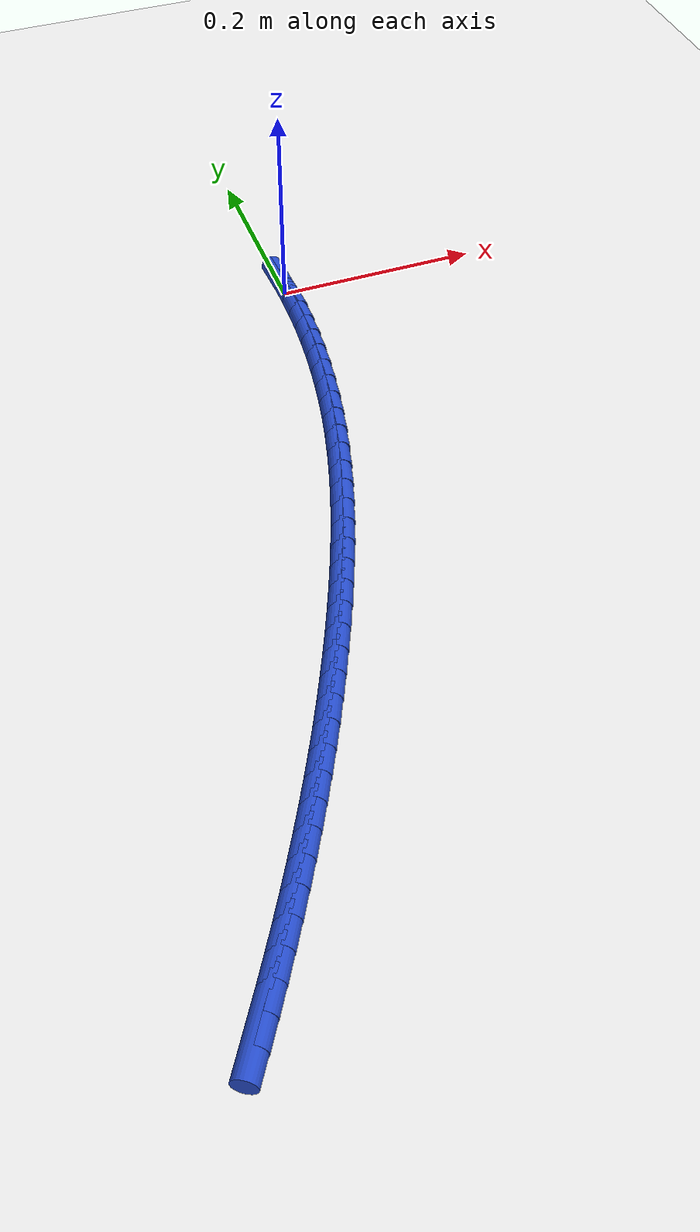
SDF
<sdf version="1.6">
 <world name="default">
  <model name="ground_plane">
   <static>1</static>
   <link name="link">
    <collision name="collision">
     <geometry><plane><normal>0 0 1</normal><size>100 100</size></plane></geometry>
     <surface><friction><ode><mu>100</mu><mu2>50</mu2></ode></friction></surface>
    </collision>
    <visual name="visual">
     <cast_shadows>0</cast_shadows>
     <geometry><plane><normal>0 0 1</normal><size>100 100</size></plane></geometry>
     <material>
      <script><uri>file://media/materials/scripts/gazebo.material</uri><name>Gazebo/WhiteGlow</name></script>
     </material>
    </visual>
   </link>
  </model>
  <model name="line">
   <link name="link_0">
    <pose>-8.673617379884035e-19 4.85722573273506e-17 0.01 0 1.57 -1.5356665718949125</pose>
    <collision name="collision">
     <geometry><cylinder><radius>0.01</radius><length>0.08</length></cylinder></geometry>
    </collision>
    <visual name="visual">
     <material>
      <script><name>Gazebo/Blue</name><uri>file://media/materials/scripts/gazebo.material</uri></script>
     </material>
     <geometry><cylinder><radius>0.01</radius><length>0.08</length></cylinder></geometry>
    </visual>
   </link>
   <link name="link_256">
    <pose>-0.2570673873489946 -0.7295082491916824 0.01 0 1.57 1.0053631164926748</pose>
    <collision name="collision">
     <geometry><cylinder><radius>0.01</radius><length>0.08</length></cylinder></geometry>
    </collision>
    <visual name="visual">
     <material>
      <script><name>Gazebo/Blue</name><uri>file://media/materials/scripts/gazebo.material</uri></script>
     </material>
     <geometry><cylinder><radius>0.01</radius><length>0.08</length></cylinder></geometry>
    </visual>
   </link>
   <link name="link_257">
    <pose>-0.24474885738054442 -0.7100950577350382 0.01 0 1.57 1.0169526677190543</pose>
    <collision name="collision">
     <geometry><cylinder><radius>0.01</radius><length>0.08</length></cylinder></geometry>
    </collision>
    <visual name="visual">
     <material>
      <script><name>Gazebo/Blue</name><uri>file://media/materials/scripts/gazebo.material</uri></script>
     </material>
     <geometry><cylinder><radius>0.01</radius><length>0.08</length></cylinder></geometry>
    </visual>
   </link>
   <link name="link_258">
    <pose>-0.23264886395665904 -0.6905286414506691 0.01 0 1.57 1.0270309313751036</pose>
    <collision name="collision">
     <geometry><cylinder><radius>0.01</radius><length>0.08</length></cylinder></geometry>
    </collision>
    <visual name="visual">
     <material>
      <script><name>Gazebo/Blue</name><uri>file://media/materials/scripts/gazebo.material</uri></script>
     </material>
     <geometry><cylinder><radius>0.01</radius><length>0.08</length></cylinder></geometry>
    </visual>
   </link>
   <link name="link_259">
    <pose>-0.22073851479441703 -0.6708277725877064 0.01 0 1.57 1.0371439175745507</pose>
    <collision name="collision">
     <geometry><cylinder><radius>0.01</radius><length>0.08</length></cylinder></geometry>
    </collision>
    <visual name="visual">
     <material>
      <script><name>Gazebo/Blue</name><uri>file://media/materials/scripts/gazebo.material</uri></script>
     </material>
     <geometry><cylinder><radius>0.01</radius><length>0.08</length></cylinder></geometry>
    </visual>
   </link>
   <link name="link_260">
    <pose>-0.20902101886122126 -0.6509956382814653 0.01 0 1.57 1.0474165994102047</pose>
    <collision name="collision">
     <geometry><cylinder><radius>0.01</radius><length>0.08</length></cylinder></geometry>
    </collision>
    <visual name="visual">
     <material>
      <script><name>Gazebo/Blue</name><uri>file://media/materials/scripts/gazebo.material</uri></script>
     </material>
     <geometry><cylinder><radius>0.01</radius><length>0.08</length></cylinder></geometry>
    </visual>
   </link>
   <link name="link_261">
    <pose>-0.1975021071033503 -0.6310342012499119 0.01 0 1.57 1.0578526980083727</pose>
    <collision name="collision">
     <geometry><cylinder><radius>0.01</radius><length>0.08</length></cylinder></geometry>
    </collision>
    <visual name="visual">
     <material>
      <script><name>Gazebo/Blue</name><uri>file://media/materials/scripts/gazebo.material</uri></script>
     </material>
     <geometry><cylinder><radius>0.01</radius><length>0.08</length></cylinder></geometry>
    </visual>
   </link>
   <link name="link_262">
    <pose>-0.18618751046708237 -0.6109454242110125 0.01 0 1.57 1.068455907578849</pose>
    <collision name="collision">
     <geometry><cylinder><radius>0.01</radius><length>0.08</length></cylinder></geometry>
    </collision>
    <visual name="visual">
     <material>
      <script><name>Gazebo/Blue</name><uri>file://media/materials/scripts/gazebo.material</uri></script>
     </material>
     <geometry><cylinder><radius>0.01</radius><length>0.08</length></cylinder></geometry>
    </visual>
   </link>
   <link name="link_263">
    <pose>-0.17508295989869582 -0.5907312698827336 0.01 0 1.57 1.0792298882117966</pose>
    <collision name="collision">
     <geometry><cylinder><radius>0.01</radius><length>0.08</length></cylinder></geometry>
    </collision>
    <visual name="visual">
     <material>
      <script><name>Gazebo/Blue</name><uri>file://media/materials/scripts/gazebo.material</uri></script>
     </material>
     <geometry><cylinder><radius>0.01</radius><length>0.08</length></cylinder></geometry>
    </visual>
   </link>
   <link name="link_264">
    <pose>-0.16419418634446908 -0.5703937009830411 0.01 0 1.57 1.090178257908235</pose>
    <collision name="collision">
     <geometry><cylinder><radius>0.01</radius><length>0.08</length></cylinder></geometry>
    </collision>
    <visual name="visual">
     <material>
      <script><name>Gazebo/Blue</name><uri>file://media/materials/scripts/gazebo.material</uri></script>
     </material>
     <geometry><cylinder><radius>0.01</radius><length>0.08</length></cylinder></geometry>
    </visual>
   </link>
   <link name="link_265">
    <pose>-0.1535269207506807 -0.5499346802299021 0.01 0 1.57 1.1013045838132274</pose>
    <collision name="collision">
     <geometry><cylinder><radius>0.01</radius><length>0.08</length></cylinder></geometry>
    </collision>
    <visual name="visual">
     <material>
      <script><name>Gazebo/Blue</name><uri>file://media/materials/scripts/gazebo.material</uri></script>
     </material>
     <geometry><cylinder><radius>0.01</radius><length>0.08</length></cylinder></geometry>
    </visual>
   </link>
   <link name="link_266">
    <pose>-0.14308689406360833 -0.5293561703412817 0.01 0 1.57 1.1126123726217205</pose>
    <collision name="collision">
     <geometry><cylinder><radius>0.01</radius><length>0.08</length></cylinder></geometry>
    </collision>
    <visual name="visual">
     <material>
      <script><name>Gazebo/Blue</name><uri>file://media/materials/scripts/gazebo.material</uri></script>
     </material>
     <geometry><cylinder><radius>0.01</radius><length>0.08</length></cylinder></geometry>
    </visual>
   </link>
   <link name="link_267">
    <pose>-0.13287983722953076 -0.5086601340351464 0.01 0 1.57 1.1241050601292641</pose>
    <collision name="collision">
     <geometry><cylinder><radius>0.01</radius><length>0.08</length></cylinder></geometry>
    </collision>
    <visual name="visual">
     <material>
      <script><name>Gazebo/Blue</name><uri>file://media/materials/scripts/gazebo.material</uri></script>
     </material>
     <geometry><cylinder><radius>0.01</radius><length>0.08</length></cylinder></geometry>
    </visual>
   </link>
   <link name="link_268">
    <pose>-0.12291148119472625 -0.48784853402946304 0.01 0 1.57 1.1357859999024595</pose>
    <collision name="collision">
     <geometry><cylinder><radius>0.01</radius><length>0.08</length></cylinder></geometry>
    </collision>
    <visual name="visual">
     <material>
      <script><name>Gazebo/Blue</name><uri>file://media/materials/scripts/gazebo.material</uri></script>
     </material>
     <geometry><cylinder><radius>0.01</radius><length>0.08</length></cylinder></geometry>
    </visual>
   </link>
   <link name="link_269">
    <pose>-0.11318755690547315 -0.46692333304219746 0.01 0 1.57 1.1476584510470997</pose>
    <collision name="collision">
     <geometry><cylinder><radius>0.01</radius><length>0.08</length></cylinder></geometry>
    </collision>
    <visual name="visual">
     <material>
      <script><name>Gazebo/Blue</name><uri>file://media/materials/scripts/gazebo.material</uri></script>
     </material>
     <geometry><cylinder><radius>0.01</radius><length>0.08</length></cylinder></geometry>
    </visual>
   </link>
   <link name="link_270">
    <pose>-0.10371379530804979 -0.44588649379131606 0.01 0 1.57 1.1597255650566989</pose>
    <collision name="collision">
     <geometry><cylinder><radius>0.01</radius><length>0.08</length></cylinder></geometry>
    </collision>
    <visual name="visual">
     <material>
      <script><name>Gazebo/Blue</name><uri>file://media/materials/scripts/gazebo.material</uri></script>
     </material>
     <geometry><cylinder><radius>0.01</radius><length>0.08</length></cylinder></geometry>
    </visual>
   </link>
   <link name="link_271">
    <pose>-0.09449592734873455 -0.42473997899478527 0.01 0 1.57 1.1720756497994034</pose>
    <collision name="collision">
     <geometry><cylinder><radius>0.01</radius><length>0.08</length></cylinder></geometry>
    </collision>
    <visual name="visual">
     <material>
      <script><name>Gazebo/Blue</name><uri>file://media/materials/scripts/gazebo.material</uri></script>
     </material>
     <geometry><cylinder><radius>0.01</radius><length>0.08</length></cylinder></geometry>
    </visual>
   </link>
   <link name="link_272">
    <pose>-0.08554152566186633 -0.40348505683631347 0.01 0 1.57 1.1854038797055286</pose>
    <collision name="collision">
     <geometry><cylinder><radius>0.01</radius><length>0.08</length></cylinder></geometry>
    </collision>
    <visual name="visual">
     <material>
      <script><name>Gazebo/Blue</name><uri>file://media/materials/scripts/gazebo.material</uri></script>
     </material>
     <geometry><cylinder><radius>0.01</radius><length>0.08</length></cylinder></geometry>
    </visual>
   </link>
   <link name="link_273">
    <pose>-0.07687310093286988 -0.38211736208728275 0.01 0 1.57 1.20005022554384</pose>
    <collision name="collision">
     <geometry><cylinder><radius>0.01</radius><length>0.08</length></cylinder></geometry>
    </collision>
    <visual name="visual">
     <material>
      <script><name>Gazebo/Blue</name><uri>file://media/materials/scripts/gazebo.material</uri></script>
     </material>
     <geometry><cylinder><radius>0.01</radius><length>0.08</length></cylinder></geometry>
    </visual>
   </link>
   <link name="link_274">
    <pose>-0.06852041602012629 -0.3606297945919889 0.01 0 1.57 1.21601979600852</pose>
    <collision name="collision">
     <geometry><cylinder><radius>0.01</radius><length>0.08</length></cylinder></geometry>
    </collision>
    <visual name="visual">
     <material>
      <script><name>Gazebo/Blue</name><uri>file://media/materials/scripts/gazebo.material</uri></script>
     </material>
     <geometry><cylinder><radius>0.01</radius><length>0.08</length></cylinder></geometry>
    </visual>
   </link>
   <link name="link_275">
    <pose>-0.06051328177285137 -0.33901523609650663 0.01 0 1.57 1.233313186886882</pose>
    <collision name="collision">
     <geometry><cylinder><radius>0.01</radius><length>0.08</length></cylinder></geometry>
    </collision>
    <visual name="visual">
     <material>
      <script><name>Gazebo/Blue</name><uri>file://media/materials/scripts/gazebo.material</uri></script>
     </material>
     <geometry><cylinder><radius>0.01</radius><length>0.08</length></cylinder></geometry>
    </visual>
   </link>
   <link name="link_276">
    <pose>-0.05288150904026109 -0.31726656834690997 0.01 0 1.57 1.2519278611983293</pose>
    <collision name="collision">
     <geometry><cylinder><radius>0.01</radius><length>0.08</length></cylinder></geometry>
    </collision>
    <visual name="visual">
     <material>
      <script><name>Gazebo/Blue</name><uri>file://media/materials/scripts/gazebo.material</uri></script>
     </material>
     <geometry><cylinder><radius>0.01</radius><length>0.08</length></cylinder></geometry>
    </visual>
   </link>
   <link name="link_277">
    <pose>-0.04565490867157131 -0.29537667308927334 0.01 0 1.57 1.2718572455250976</pose>
    <collision name="collision">
     <geometry><cylinder><radius>0.01</radius><length>0.08</length></cylinder></geometry>
    </collision>
    <visual name="visual">
     <material>
      <script><name>Gazebo/Blue</name><uri>file://media/materials/scripts/gazebo.material</uri></script>
     </material>
     <geometry><cylinder><radius>0.01</radius><length>0.08</length></cylinder></geometry>
    </visual>
   </link>
   <link name="link_278">
    <pose>-0.038863291515997926 -0.273338432069671 0.01 0 1.57 1.293089779240716</pose>
    <collision name="collision">
     <geometry><cylinder><radius>0.01</radius><length>0.08</length></cylinder></geometry>
    </collision>
    <visual name="visual">
     <material>
      <script><name>Gazebo/Blue</name><uri>file://media/materials/scripts/gazebo.material</uri></script>
     </material>
     <geometry><cylinder><radius>0.01</radius><length>0.08</length></cylinder></geometry>
    </visual>
   </link>
   <link name="link_279">
    <pose>-0.03253646842275684 -0.25114472703417723 0.01 0 1.57 1.315607937595143</pose>
    <collision name="collision">
     <geometry><cylinder><radius>0.01</radius><length>0.08</length></cylinder></geometry>
    </collision>
    <visual name="visual">
     <material>
      <script><name>Gazebo/Blue</name><uri>file://media/materials/scripts/gazebo.material</uri></script>
     </material>
     <geometry><cylinder><radius>0.01</radius><length>0.08</length></cylinder></geometry>
    </visual>
   </link>
   <link name="link_280">
    <pose>-0.02670425024106415 -0.2287884397288671 0.01 0 1.57 1.3393773693503808</pose>
    <collision name="collision">
     <geometry><cylinder><radius>0.01</radius><length>0.08</length></cylinder></geometry>
    </collision>
    <visual name="visual">
     <material>
      <script><name>Gazebo/Blue</name><uri>file://media/materials/scripts/gazebo.material</uri></script>
     </material>
     <geometry><cylinder><radius>0.01</radius><length>0.08</length></cylinder></geometry>
    </visual>
   </link>
   <link name="link_281">
    <pose>-0.02139629909069628 -0.20626281839237073 0.01 0 1.57 1.3639633488749237</pose>
    <collision name="collision">
     <geometry><cylinder><radius>0.01</radius><length>0.08</length></cylinder></geometry>
    </collision>
    <visual name="visual">
     <material>
      <script><name>Gazebo/Blue</name><uri>file://media/materials/scripts/gazebo.material</uri></script>
     </material>
     <geometry><cylinder><radius>0.01</radius><length>0.08</length></cylinder></geometry>
    </visual>
   </link>
   <link name="link_282">
    <pose>-0.016635973633698824 -0.1835766439672559 0.01 0 1.57 1.3888520670644873</pose>
    <collision name="collision">
     <geometry><cylinder><radius>0.01</radius><length>0.08</length></cylinder></geometry>
    </collision>
    <visual name="visual">
     <material>
      <script><name>Gazebo/Blue</name><uri>file://media/materials/scripts/gazebo.material</uri></script>
     </material>
     <geometry><cylinder><radius>0.01</radius><length>0.08</length></cylinder></geometry>
    </visual>
   </link>
   <link name="link_283">
    <pose>-0.01243812889586215 -0.1607596516833954 0.01 0 1.57 1.4140794713927238</pose>
    <collision name="collision">
     <geometry><cylinder><radius>0.01</radius><length>0.08</length></cylinder></geometry>
    </collision>
    <visual name="visual">
     <material>
      <script><name>Gazebo/Blue</name><uri>file://media/materials/scripts/gazebo.material</uri></script>
     </material>
     <geometry><cylinder><radius>0.01</radius><length>0.08</length></cylinder></geometry>
    </visual>
   </link>
   <link name="link_284">
    <pose>-0.008817018735906413 -0.1378430581401761 0.01 0 1.57 1.4397216434519804</pose>
    <collision name="collision">
     <geometry><cylinder><radius>0.01</radius><length>0.08</length></cylinder></geometry>
    </collision>
    <visual name="visual">
     <material>
      <script><name>Gazebo/Blue</name><uri>file://media/materials/scripts/gazebo.material</uri></script>
     </material>
     <geometry><cylinder><radius>0.01</radius><length>0.08</length></cylinder></geometry>
    </visual>
   </link>
   <link name="link_285">
    <pose>-0.0057868970125517566 -0.1148580799369852 0.01 0 1.57 1.4658551364299472</pose>
    <collision name="collision">
     <geometry><cylinder><radius>0.01</radius><length>0.08</length></cylinder></geometry>
    </collision>
    <visual name="visual">
     <material>
      <script><name>Gazebo/Blue</name><uri>file://media/materials/scripts/gazebo.material</uri></script>
     </material>
     <geometry><cylinder><radius>0.01</radius><length>0.08</length></cylinder></geometry>
    </visual>
   </link>
   <link name="link_286">
    <pose>-0.003362017584518338 -0.09183593367320952 0.01 0 1.57 1.4925572124925686</pose>
    <collision name="collision">
     <geometry><cylinder><radius>0.01</radius><length>0.08</length></cylinder></geometry>
    </collision>
    <visual name="visual">
     <material>
      <script><name>Gazebo/Blue</name><uri>file://media/materials/scripts/gazebo.material</uri></script>
     </material>
     <geometry><cylinder><radius>0.01</radius><length>0.08</length></cylinder></geometry>
    </visual>
   </link>
   <link name="link_287">
    <pose>-0.001556634310526303 -0.06880783594823617 0.01 0 1.57 1.5199060009911003</pose>
    <collision name="collision">
     <geometry><cylinder><radius>0.01</radius><length>0.08</length></cylinder></geometry>
    </collision>
    <visual name="visual">
     <material>
      <script><name>Gazebo/Blue</name><uri>file://media/materials/scripts/gazebo.material</uri></script>
     </material>
     <geometry><cylinder><radius>0.01</radius><length>0.08</length></cylinder></geometry>
    </visual>
   </link>
   <link name="link_288">
    <pose>-0.0003850010492958034 -0.04580500336145214 0.01 0 1.57 1.547980562753667</pose>
    <collision name="collision">
     <geometry><cylinder><radius>0.01</radius><length>0.08</length></cylinder></geometry>
    </collision>
    <visual name="visual">
     <material>
      <script><name>Gazebo/Blue</name><uri>file://media/materials/scripts/gazebo.material</uri></script>
     </material>
     <geometry><cylinder><radius>0.01</radius><length>0.08</length></cylinder></geometry>
    </visual>
   </link>
   <link name="link_289">
    <pose>0.00013862834045301172 -0.022858652512244407 0.01 0 1.57 -1.5647318117991964</pose>
    <collision name="collision">
     <geometry><cylinder><radius>0.01</radius><length>0.08</length></cylinder></geometry>
    </collision>
    <visual name="visual">
     <material>
      <script><name>Gazebo/Blue</name><uri>file://media/materials/scripts/gazebo.material</uri></script>
     </material>
     <geometry><cylinder><radius>0.01</radius><length>0.08</length></cylinder></geometry>
    </visual>
   </link>
   <link name="link_290">
    <pose>-6.938893903907228e-18 6.938893903907228e-18 0.01 0 1.57 -1.53496517211338</pose>
    <collision name="collision">
     <geometry><cylinder><radius>0.01</radius><length>0.08</length></cylinder></geometry>
    </collision>
    <visual name="visual">
     <material>
      <script><name>Gazebo/Blue</name><uri>file://media/materials/scripts/gazebo.material</uri></script>
     </material>
     <geometry><cylinder><radius>0.01</radius><length>0.08</length></cylinder></geometry>
    </visual>
   </link>
  </model>
 </world>
</sdf>
